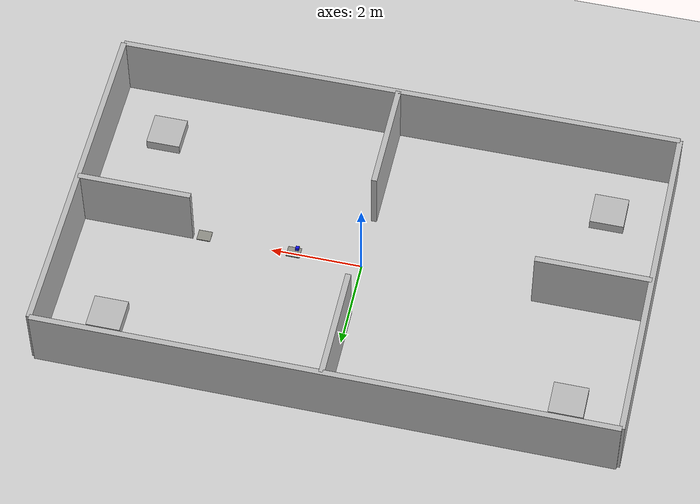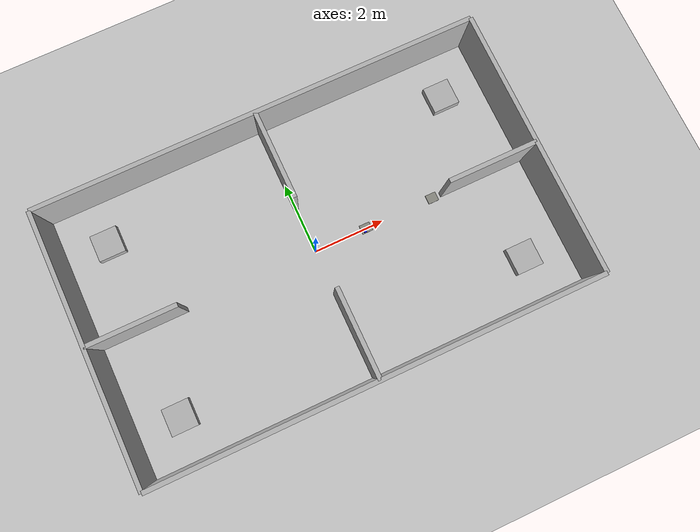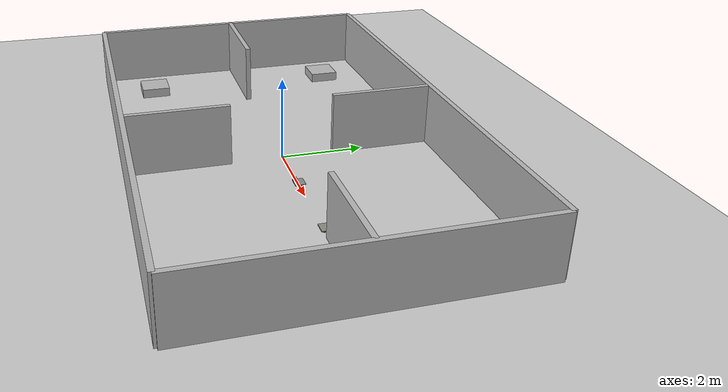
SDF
<?xml version="1.0" ?>
<sdf version="1.8">
  <world name="pharmacy_world">

    <physics name="1ms" type="ignored">
      <max_step_size>0.001</max_step_size>
      <real_time_factor>1.0</real_time_factor>
    </physics>

    <plugin filename="gz-sim-physics-system" name="gz::sim::systems::Physics"/>
    <plugin filename="gz-sim-user-commands-system" name="gz::sim::systems::UserCommands"/>
    <plugin filename="gz-sim-scene-broadcaster-system" name="gz::sim::systems::SceneBroadcaster"/>

    <plugin filename="gz-sim-sensors-system" name="gz::sim::systems::Sensors">
      <render_engine>ogre2</render_engine>
    </plugin>
    <plugin filename="gz-sim-imu-system" name="gz::sim::systems::Imu"/>
    <plugin filename="gz-sim-contact-system" name="gz::sim::systems::Contact"/>

    <light type="directional" name="sun">
      <cast_shadows>true</cast_shadows>
      <pose>0 0 50 0 0 0</pose>
      <diffuse>0.8 0.8 0.8 1</diffuse>
      <specular>0.2 0.2 0.2 1</specular>
      <attenuation>
        <range>5000</range>
        <constant>0.9</constant>
        <linear>0.01</linear>
        <quadratic>0.001</quadratic>
      </attenuation>
      <direction>-0.5 0.1 -0.9</direction>
    </light>

    <model name="ground_plane">
      <static>true</static>
      <link name="link">
        <collision name="collision">
          <geometry>
            <plane>
              <normal>0 0 1</normal>
              <size>500 500</size>
            </plane>
          </geometry>
        </collision>
        <visual name="visual">
          <geometry>
            <plane>
              <normal>0 0 1</normal>
              <size>500 500</size>
            </plane>
          </geometry>
          <material>
            <ambient>0.8 0.8 0.8 1</ambient>
            <diffuse>0.8 0.8 0.8 1</diffuse>
            <specular>0.8 0.8 0.8 1</specular>
          </material>
        </visual>
      </link>
    </model>

    <model name='pharmacy_arena'>
      <static>true</static>
      <pose>0 0 0 0 0 0</pose>

      <!-- OUTER WALLS -->

      <link name='Wall_Top'>
        <pose>0 3.75 0.75 0 0 0</pose>
        <visual name='v'>
          <geometry><box><size>12.5 0.125 1.5</size></box></geometry>
        </visual>
        <collision name='c'>
          <geometry><box><size>12.5 0.125 1.5</size></box></geometry>
        </collision>
      </link>

      <link name='Wall_Bottom'>
        <pose>0 -3.75 0.75 0 0 0</pose>
        <visual name='v'>
          <geometry><box><size>12.5 0.125 1.5</size></box></geometry>
        </visual>
        <collision name='c'>
          <geometry><box><size>12.5 0.125 1.5</size></box></geometry>
        </collision>
      </link>

      <link name='Wall_Left'>
        <pose>-6.25 0 0.75 0 0 0</pose>
        <visual name='v'>
          <geometry><box><size>0.125 7.5 1.5</size></box></geometry>
        </visual>
        <collision name='c'>
          <geometry><box><size>0.125 7.5 1.5</size></box></geometry>
        </collision>
      </link>

      <link name='Wall_Right'>
        <pose>6.25 0 0.75 0 0 0</pose>
        <visual name='v'>
          <geometry><box><size>0.125 7.5 1.5</size></box></geometry>
        </visual>
        <collision name='c'>
          <geometry><box><size>0.125 7.5 1.5</size></box></geometry>
        </collision>
      </link>

      <!-- TOP CENTER WALL -->
      <link name='Top_Center'>
        <pose>0 2.5 0.75 0 0 0</pose>
        <visual name='v'>
          <geometry><box><size>0.125 2.5 1.5</size></box></geometry>
        </visual>
        <collision name='c'>
          <geometry><box><size>0.125 2.5 1.5</size></box></geometry>
        </collision>
      </link>

      <!-- BOTTOM CENTER WALL -->
      <link name='Bottom_Center'>
        <pose>0 -2.5 0.75 0 0 0</pose>
        <visual name='v'>
          <geometry><box><size>0.125 2.5 1.5</size></box></geometry>
        </visual>
        <collision name='c'>
          <geometry><box><size>0.125 2.5 1.5</size></box></geometry>
        </collision>
      </link>

      <!-- LEFT CENTER WALL -->
      <link name='Left_Center'>
        <pose>-5 0 0.75 0 0 0</pose>
        <visual name='v'>
          <geometry><box><size>2.5 0.125 1.5</size></box></geometry>
        </visual>
        <collision name='c'>
          <geometry><box><size>2.5 0.125 1.5</size></box></geometry>
        </collision>
      </link>

      <!-- RIGHT CENTER WALL -->
      <link name='Right_Center'>
        <pose>5 0 0.75 0 0 0</pose>
        <visual name='v'>
          <geometry><box><size>2.5 0.125 1.5</size></box></geometry>
        </visual>
        <collision name='c'>
          <geometry><box><size>2.5 0.125 1.5</size></box></geometry>
        </collision>
      </link>

      <!-- SHELF A -->
      <link name='Shelf_A'>
        <pose>-5 2.5 0.10 0 0 0</pose>
        <visual name='v'>
          <geometry><box><size>0.75 0.75 0.25</size></box></geometry>
        </visual>
        <collision name='c'>
          <geometry><box><size>0.75 0.75 0.25</size></box></geometry>
        </collision>
      </link>

      <!-- SHELF B -->
      <link name='Shelf_B'>
        <pose>5 2.5 0.10 0 0 0</pose>
        <visual name='v'>
          <geometry><box><size>0.75 0.75 0.25</size></box></geometry>
        </visual>
        <collision name='c'>
          <geometry><box><size>0.75 0.75 0.25</size></box></geometry>
        </collision>
      </link>

      <!-- SHELF C -->
      <link name='Shelf_C'>
        <pose>-5 -2.5 0.10 0 0 0</pose>
        <visual name='v'>
          <geometry><box><size>0.75 0.75 0.25</size></box></geometry>
        </visual>
        <collision name='c'>
          <geometry><box><size>0.75 0.75 0.25</size></box></geometry>
        </collision>
      </link>

      <!-- SHELF D -->
      <link name='Shelf_D'>
        <pose>5 -2.5 0.10 0 0 0</pose>
        <visual name='v'>
          <geometry><box><size>0.75 0.75 0.25</size></box></geometry>
        </visual>
        <collision name='c'>
          <geometry><box><size>0.75 0.75 0.25</size></box></geometry>
        </collision>
      </link>

    </model>

    <!-- Table 1 (Pickup) -->
    <model name="k12_object_table">
      <static>true</static>
      <pose>1.5 0.0 0.0 0 0 0</pose>
      <link name="table_link">
        <collision name="top_collision">
          <pose>0 0 0.09 0 0 0</pose>
          <geometry>
            <box>
              <size>0.30 0.25 0.02</size>
            </box>
          </geometry>
          <surface>
            <friction>
              <ode>
                <mu>2.5</mu>
                <mu2>2.5</mu2>
              </ode>
            </friction>
          </surface>
        </collision>
        <visual name="top_visual">
          <pose>0 0 0.09 0 0 0</pose>
          <geometry>
            <box>
              <size>0.30 0.25 0.02</size>
            </box>
          </geometry>
          <material>
            <ambient>0.55 0.55 0.52 1</ambient>
            <diffuse>0.55 0.55 0.52 1</diffuse>
          </material>
        </visual>
        <collision name="leg_collision">
          <pose>0 0 0.04 0 0 0</pose>
          <geometry>
            <box>
              <size>0.10 0.10 0.08</size>
            </box>
          </geometry>
        </collision>
        <visual name="leg_visual">
          <pose>0 0 0.04 0 0 0</pose>
          <geometry>
            <box>
              <size>0.10 0.10 0.08</size>
            </box>
          </geometry>
          <material>
            <ambient>0.38 0.38 0.38 1</ambient>
            <diffuse>0.38 0.38 0.38 1</diffuse>
          </material>
        </visual>
      </link>
    </model>

    <!-- Table 2 (Place) -->
    <model name="k12_place_table">
      <static>true</static>
      <pose>3.5 0.0 0.0 0 0 0</pose>
      <link name="table_link">
        <collision name="top_collision">
          <pose>0 0 0.09 0 0 0</pose>
          <geometry>
            <box>
              <size>0.30 0.25 0.02</size>
            </box>
          </geometry>
          <surface>
            <friction>
              <ode>
                <mu>2.5</mu>
                <mu2>2.5</mu2>
              </ode>
            </friction>
          </surface>
        </collision>
        <visual name="top_visual">
          <pose>0 0 0.09 0 0 0</pose>
          <geometry>
            <box>
              <size>0.30 0.25 0.02</size>
            </box>
          </geometry>
          <material>
            <ambient>0.55 0.55 0.52 1</ambient>
            <diffuse>0.55 0.55 0.52 1</diffuse>
          </material>
        </visual>
        <collision name="leg_collision">
          <pose>0 0 0.04 0 0 0</pose>
          <geometry>
            <box>
              <size>0.10 0.10 0.08</size>
            </box>
          </geometry>
        </collision>
        <visual name="leg_visual">
          <pose>0 0 0.04 0 0 0</pose>
          <geometry>
            <box>
              <size>0.10 0.10 0.08</size>
            </box>
          </geometry>
          <material>
            <ambient>0.38 0.38 0.38 1</ambient>
            <diffuse>0.38 0.38 0.38 1</diffuse>
          </material>
        </visual>
      </link>
    </model>

    <!-- Blue Block -->
    <model name="k12_blue_block">
      <static>false</static>
      <pose>1.44 -0.08 0.1422 0 0 0</pose>
      <link name="link">
        <inertial>
          <mass>0.6075</mass>
          <inertia>
            <ixx>0.000558</ixx>
            <iyy>0.000558</iyy>
            <izz>0.000558</izz>
            <ixy>0</ixy>
            <ixz>0</ixz>
            <iyz>0</iyz>
          </inertia>
        </inertial>
        <collision name="collision">
          <geometry>
            <box>
              <size>0.07425 0.07425 0.07425</size>
            </box>
          </geometry>
          <surface>
            <friction>
              <ode>
                <mu>3.0</mu>
                <mu2>3.0</mu2>
              </ode>
            </friction>
            <contact>
              <ode>
                <kp>5000</kp>
                <kd>20</kd>
                <max_vel>0.1</max_vel>
                <min_depth>0.0005</min_depth>
              </ode>
            </contact>
          </surface>
        </collision>
        <visual name="visual">
          <geometry>
            <box>
              <size>0.07425 0.07425 0.07425</size>
            </box>
          </geometry>
          <material>
            <ambient>0.05 0.05 0.95 1</ambient>
            <diffuse>0.05 0.05 0.95 1</diffuse>
          </material>
        </visual>
      </link>
    </model>

  </world>
</sdf>
